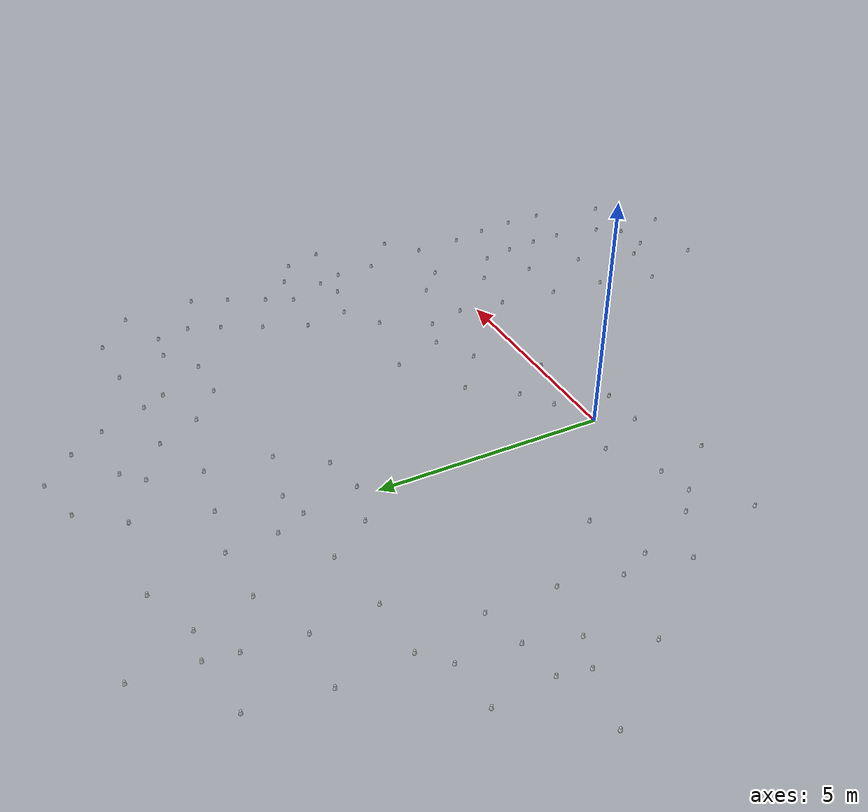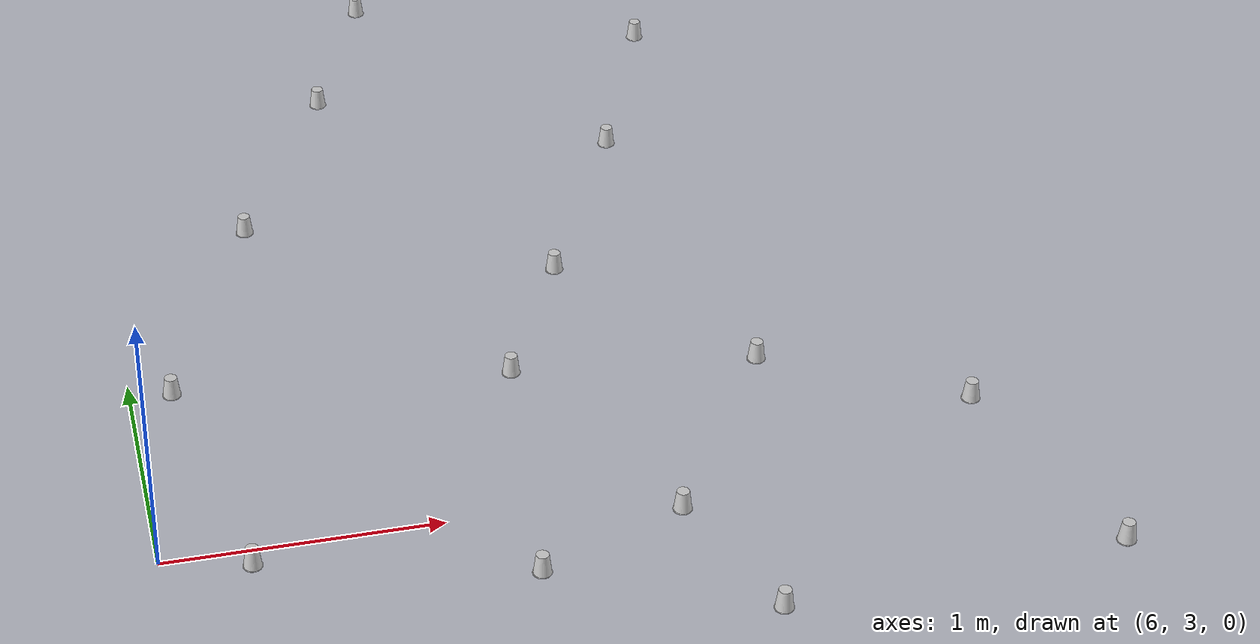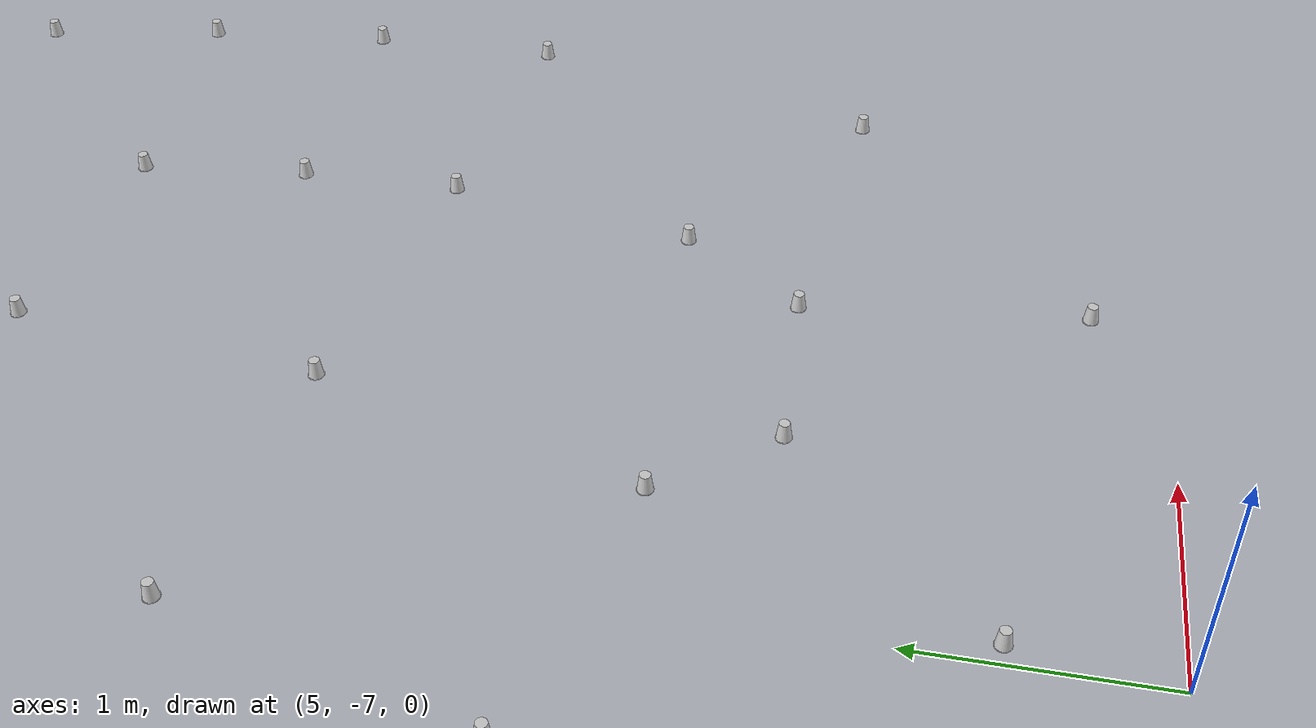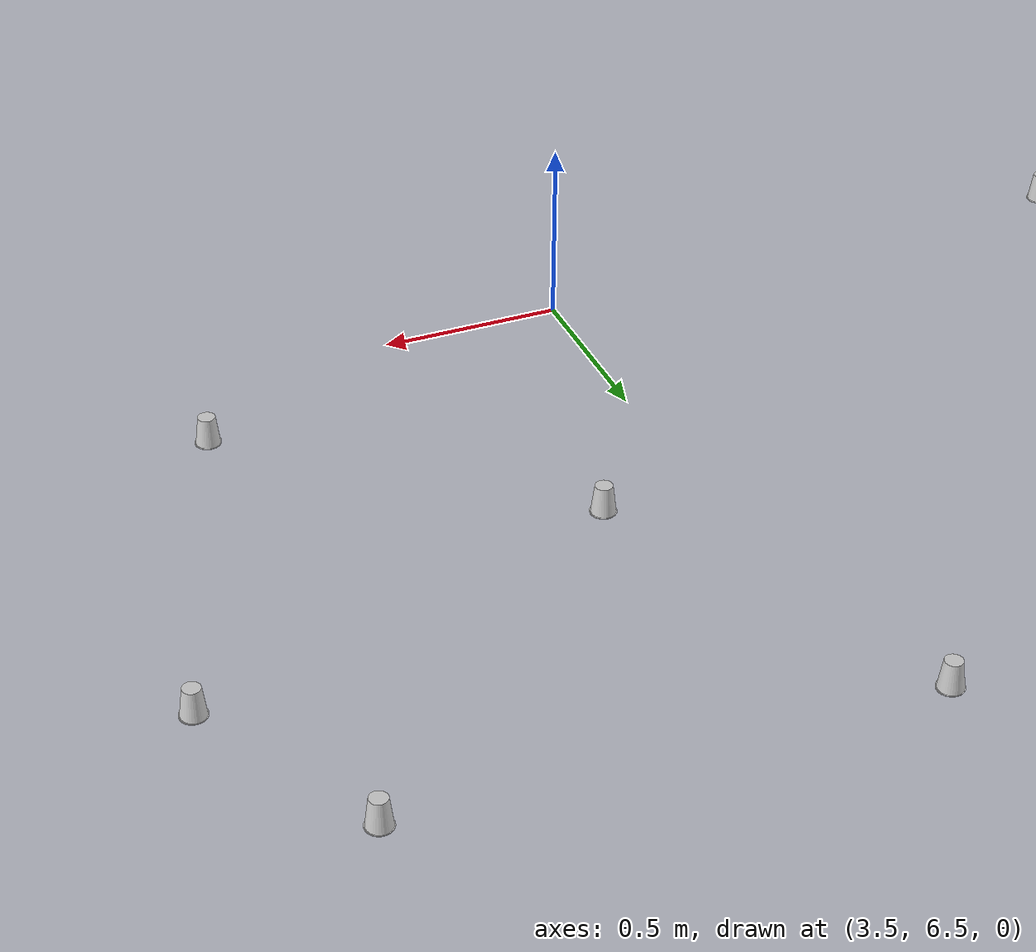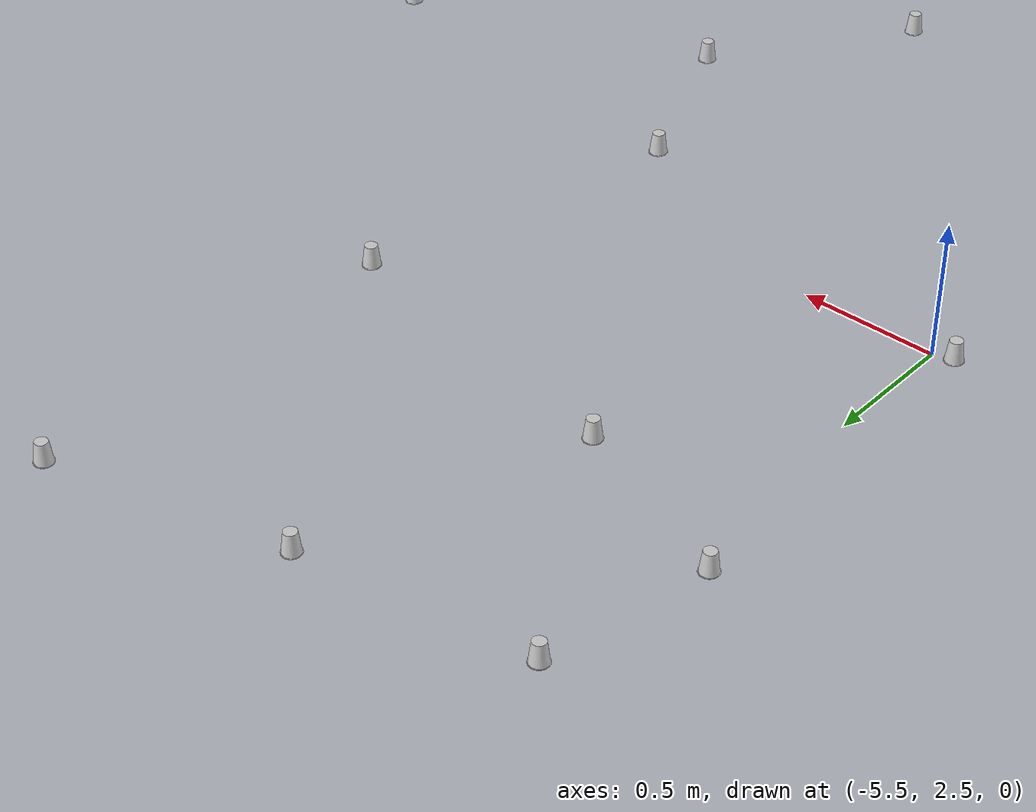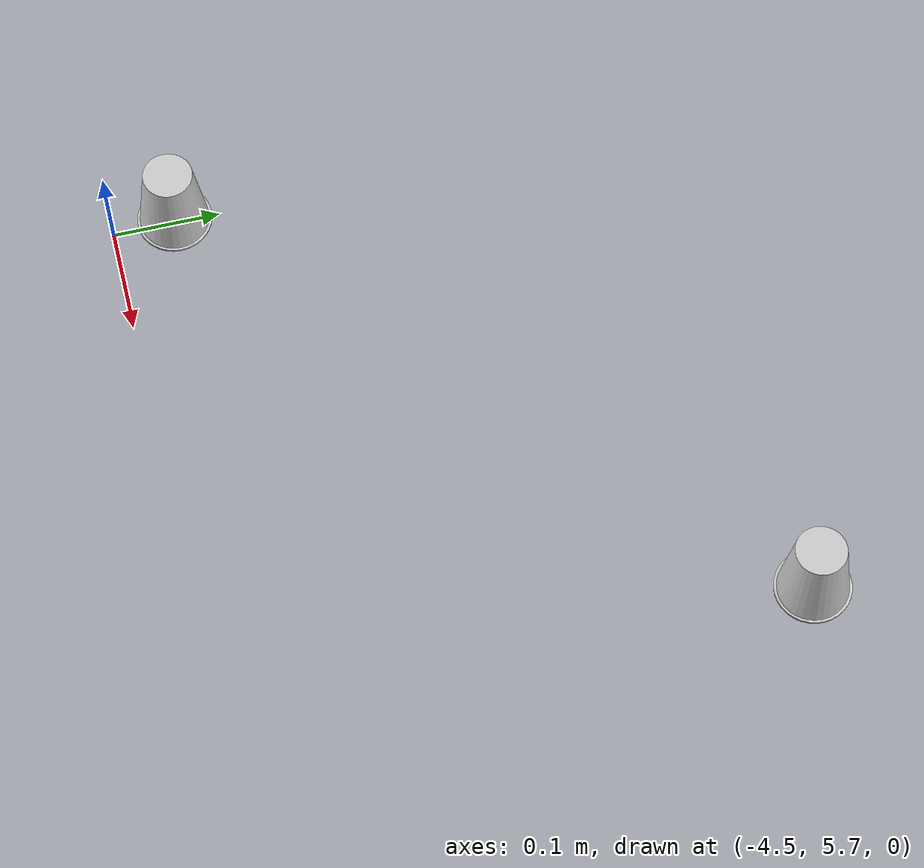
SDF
<?xml version='1.0' encoding='UTF-8'?>
<sdf version="1.4">
  <model name="some track">
    <include>
      <uri>model://cone_yellow</uri>
      <pose>0.583589007108292 -0.7696091175995019 0 0 0 0</pose>
      <name>cone_right_0</name>
    </include>
    <include>
      <uri>model://cone_yellow</uri>
      <pose>2.24943002870523 -0.09118990269669247 0 0 0 0</pose>
      <name>cone_right_1</name>
    </include>
    <include>
      <uri>model://cone_yellow</uri>
      <pose>3.235803745951537 1.0829586999844123 0 0 0 0</pose>
      <name>cone_right_2</name>
    </include>
    <include>
      <uri>model://cone_yellow</uri>
      <pose>4.126395633885825 1.570532858865489 0 0 0 0</pose>
      <name>cone_right_3</name>
    </include>
    <include>
      <uri>model://cone_yellow</uri>
      <pose>4.883761104900243 1.2791141345525148 0 0 0 0</pose>
      <name>cone_right_4</name>
    </include>
    <include>
      <uri>model://cone_yellow</uri>
      <pose>5.115553462184828 0.40940255156920635 0 0 0 0</pose>
      <name>cone_right_5</name>
    </include>
    <include>
      <uri>model://cone_yellow</uri>
      <pose>4.989859720882258 -0.6942495351093164 0 0 0 0</pose>
      <name>cone_right_6</name>
    </include>
    <include>
      <uri>model://cone_yellow</uri>
      <pose>4.8571133489841865 -2.0641194481525207 0 0 0 0</pose>
      <name>cone_right_7</name>
    </include>
    <include>
      <uri>model://cone_yellow</uri>
      <pose>4.731190555467122 -3.360131154909003 0 0 0 0</pose>
      <name>cone_right_8</name>
    </include>
    <include>
      <uri>model://cone_yellow</uri>
      <pose>4.373203166632164 -4.690241786618625 0 0 0 0</pose>
      <name>cone_right_9</name>
    </include>
    <include>
      <uri>model://cone_yellow</uri>
      <pose>5.087928799197132 -6.3678781803901865 0 0 0 0</pose>
      <name>cone_right_10</name>
    </include>
    <include>
      <uri>model://cone_yellow</uri>
      <pose>6.922831055264934 -6.67300092533221 0 0 0 0</pose>
      <name>cone_right_11</name>
    </include>
    <include>
      <uri>model://cone_yellow</uri>
      <pose>8.195565542916837 -5.568966994588301 0 0 0 0</pose>
      <name>cone_right_12</name>
    </include>
    <include>
      <uri>model://cone_yellow</uri>
      <pose>8.576331552117795 -3.8710940322960474 0 0 0 0</pose>
      <name>cone_right_13</name>
    </include>
    <include>
      <uri>model://cone_yellow</uri>
      <pose>8.563769762967747 -2.9696765424473592 0 0 0 0</pose>
      <name>cone_right_14</name>
    </include>
    <include>
      <uri>model://cone_yellow</uri>
      <pose>8.464509025783059 -2.073906762252765 0 0 0 0</pose>
      <name>cone_right_15</name>
    </include>
    <include>
      <uri>model://cone_yellow</uri>
      <pose>8.302023140736598 -1.2190041056068326 0 0 0 0</pose>
      <name>cone_right_16</name>
    </include>
    <include>
      <uri>model://cone_yellow</uri>
      <pose>8.25647984927409 -0.07724787858975865 0 0 0 0</pose>
      <name>cone_right_17</name>
    </include>
    <include>
      <uri>model://cone_yellow</uri>
      <pose>8.991000449996772 0.5662821472809246 0 0 0 0</pose>
      <name>cone_right_18</name>
    </include>
    <include>
      <uri>model://cone_yellow</uri>
      <pose>9.263680717973065 2.408579022444409 0 0 0 0</pose>
      <name>cone_right_19</name>
    </include>
    <include>
      <uri>model://cone_yellow</uri>
      <pose>9.007850910027058 3.2751313498097665 0 0 0 0</pose>
      <name>cone_right_20</name>
    </include>
    <include>
      <uri>model://cone_yellow</uri>
      <pose>7.396967898715231 3.7862380996157814 0 0 0 0</pose>
      <name>cone_right_21</name>
    </include>
    <include>
      <uri>model://cone_yellow</uri>
      <pose>7.70024113869991 4.3963544366834775 0 0 0 0</pose>
      <name>cone_right_22</name>
    </include>
    <include>
      <uri>model://cone_yellow</uri>
      <pose>8.111546850525015 5.230541698648054 0 0 0 0</pose>
      <name>cone_right_23</name>
    </include>
    <include>
      <uri>model://cone_yellow</uri>
      <pose>8.436211109141361 6.039813071662059 0 0 0 0</pose>
      <name>cone_right_24</name>
    </include>
    <include>
      <uri>model://cone_yellow</uri>
      <pose>8.312891527650365 7.696920933023274 0 0 0 0</pose>
      <name>cone_right_25</name>
    </include>
    <include>
      <uri>model://cone_yellow</uri>
      <pose>4.934542926315535 7.799093103535977 0 0 0 0</pose>
      <name>cone_right_26</name>
    </include>
    <include>
      <uri>model://cone_yellow</uri>
      <pose>4.6671698481437645 8.292913274120698 0 0 0 0</pose>
      <name>cone_right_27</name>
    </include>
    <include>
      <uri>model://cone_yellow</uri>
      <pose>4.238079434961489 9.310746750608974 0 0 0 0</pose>
      <name>cone_right_28</name>
    </include>
    <include>
      <uri>model://cone_yellow</uri>
      <pose>3.7511276764740544 10.048411819984608 0 0 0 0</pose>
      <name>cone_right_29</name>
    </include>
    <include>
      <uri>model://cone_yellow</uri>
      <pose>1.9228351139174766 10.468658543235843 0 0 0 0</pose>
      <name>cone_right_30</name>
    </include>
    <include>
      <uri>model://cone_yellow</uri>
      <pose>1.232442516302764 9.563271438475368 0 0 0 0</pose>
      <name>cone_right_31</name>
    </include>
    <include>
      <uri>model://cone_yellow</uri>
      <pose>0.8194323304207409 8.028541355771152 0 0 0 0</pose>
      <name>cone_right_32</name>
    </include>
    <include>
      <uri>model://cone_yellow</uri>
      <pose>0.6525130206930447 6.72039734893066 0 0 0 0</pose>
      <name>cone_right_33</name>
    </include>
    <include>
      <uri>model://cone_yellow</uri>
      <pose>0.015871236371141684 6.553314815356496 0 0 0 0</pose>
      <name>cone_right_34</name>
    </include>
    <include>
      <uri>model://cone_yellow</uri>
      <pose>-0.2831254388546792 7.178294153551901 0 0 0 0</pose>
      <name>cone_right_35</name>
    </include>
    <include>
      <uri>model://cone_yellow</uri>
      <pose>-0.3520715942056466 8.223539528368295 0 0 0 0</pose>
      <name>cone_right_36</name>
    </include>
    <include>
      <uri>model://cone_yellow</uri>
      <pose>-0.74337674395007 9.788748139651943 0 0 0 0</pose>
      <name>cone_right_37</name>
    </include>
    <include>
      <uri>model://cone_yellow</uri>
      <pose>-2.4953426612441882 10.659286189594507 0 0 0 0</pose>
      <name>cone_right_38</name>
    </include>
    <include>
      <uri>model://cone_yellow</uri>
      <pose>-3.8862368269471705 9.205601147669608 0 0 0 0</pose>
      <name>cone_right_39</name>
    </include>
    <include>
      <uri>model://cone_yellow</uri>
      <pose>-4.088979865017309 7.696796514227832 0 0 0 0</pose>
      <name>cone_right_40</name>
    </include>
    <include>
      <uri>model://cone_yellow</uri>
      <pose>-4.00591172065522 6.235873838154754 0 0 0 0</pose>
      <name>cone_right_41</name>
    </include>
    <include>
      <uri>model://cone_yellow</uri>
      <pose>-4.504562527867765 5.75869590041592 0 0 0 0</pose>
      <name>cone_right_42</name>
    </include>
    <include>
      <uri>model://cone_yellow</uri>
      <pose>-5.551666967226151 5.6738093858385925 0 0 0 0</pose>
      <name>cone_right_43</name>
    </include>
    <include>
      <uri>model://cone_yellow</uri>
      <pose>-6.80863020195866 4.12128773315843 0 0 0 0</pose>
      <name>cone_right_44</name>
    </include>
    <include>
      <uri>model://cone_yellow</uri>
      <pose>-5.570335270039995 2.480174757924448 0 0 0 0</pose>
      <name>cone_right_45</name>
    </include>
    <include>
      <uri>model://cone_yellow</uri>
      <pose>-4.053810303210472 2.1119341923462382 0 0 0 0</pose>
      <name>cone_right_46</name>
    </include>
    <include>
      <uri>model://cone_yellow</uri>
      <pose>-3.7749660045900812 1.4539563071306711 0 0 0 0</pose>
      <name>cone_right_47</name>
    </include>
    <include>
      <uri>model://cone_yellow</uri>
      <pose>-4.258192062991904 0.7404525257401842 0 0 0 0</pose>
      <name>cone_right_48</name>
    </include>
    <include>
      <uri>model://cone_yellow</uri>
      <pose>-3.6450108753639174 -1.1881485674039258 0 0 0 0</pose>
      <name>cone_right_49</name>
    </include>
    <include>
      <uri>model://cone_yellow</uri>
      <pose>-1.7102672057526285 -1.4405297008459108 0 0 0 0</pose>
      <name>cone_right_50</name>
    </include>
    <include>
      <uri>model://cone_yellow</uri>
      <pose>-0.35306088244469686 -0.7728776240404348 0 0 0 0</pose>
      <name>cone_right_51</name>
    </include>
    <include>
      <uri>model://cone_yellow</uri>
      <pose>8.307588909050942 3.6747710082682445 0 0 0 0</pose>
      <name>cone_right_52</name>
    </include>
    <include>
      <uri>model://cone_yellow</uri>
      <pose>3.0118128523868606 10.744975925476915 0 0 0 0</pose>
      <name>cone_right_53</name>
    </include>
    <include>
      <uri>model://cone_yellow</uri>
      <pose>7.372231060081695 8.489112877962867 0 0 0 0</pose>
      <name>cone_right_54</name>
    </include>
    <include>
      <uri>model://cone_yellow</uri>
      <pose>6.010460074082367 8.461602352993182 0 0 0 0</pose>
      <name>cone_right_55</name>
    </include>
    <include>
      <uri>model://cone_blue</uri>
      <pose>0.8542288959070702 0.45074085293804234 0 0 0 0</pose>
      <name>cone_left_0</name>
    </include>
    <include>
      <uri>model://cone_blue</uri>
      <pose>1.502369283368533 0.9110078037350167 0 0 0 0</pose>
      <name>cone_left_1</name>
    </include>
    <include>
      <uri>model://cone_blue</uri>
      <pose>2.2473372048732707 1.8480952218997944 0 0 0 0</pose>
      <name>cone_left_2</name>
    </include>
    <include>
      <uri>model://cone_blue</uri>
      <pose>3.688274670750814 2.741237783969014 0 0 0 0</pose>
      <name>cone_left_3</name>
    </include>
    <include>
      <uri>model://cone_blue</uri>
      <pose>5.4903031839847785 2.372094786851452 0 0 0 0</pose>
      <name>cone_left_4</name>
    </include>
    <include>
      <uri>model://cone_blue</uri>
      <pose>6.33123466476965 0.7002963701386631 0 0 0 0</pose>
      <name>cone_left_5</name>
    </include>
    <include>
      <uri>model://cone_blue</uri>
      <pose>6.225387119726417 -0.8839125170150849 0 0 0 0</pose>
      <name>cone_left_6</name>
    </include>
    <include>
      <uri>model://cone_blue</uri>
      <pose>6.105137654570906 -2.1343713710072527 0 0 0 0</pose>
      <name>cone_left_7</name>
    </include>
    <include>
      <uri>model://cone_blue</uri>
      <pose>5.969281269585568 -3.5322688428616322 0 0 0 0</pose>
      <name>cone_left_8</name>
    </include>
    <include>
      <uri>model://cone_blue</uri>
      <pose>5.585497849256548 -4.994940986618635 0 0 0 0</pose>
      <name>cone_left_9</name>
    </include>
    <include>
      <uri>model://cone_blue</uri>
      <pose>5.96607828570017 -5.478297672873047 0 0 0 0</pose>
      <name>cone_left_10</name>
    </include>
    <include>
      <uri>model://cone_blue</uri>
      <pose>6.772131773349827 -5.4321182852609295 0 0 0 0</pose>
      <name>cone_left_11</name>
    </include>
    <include>
      <uri>model://cone_blue</uri>
      <pose>7.151167001436391 -4.882139733514954 0 0 0 0</pose>
      <name>cone_left_12</name>
    </include>
    <include>
      <uri>model://cone_blue</uri>
      <pose>7.333527942595058 -3.7371567777428205 0 0 0 0</pose>
      <name>cone_left_13</name>
    </include>
    <include>
      <uri>model://cone_blue</uri>
      <pose>7.314007560331207 -2.994057618327338 0 0 0 0</pose>
      <name>cone_left_14</name>
    </include>
    <include>
      <uri>model://cone_blue</uri>
      <pose>7.222539903265307 -2.215373008094267 0 0 0 0</pose>
      <name>cone_left_15</name>
    </include>
    <include>
      <uri>model://cone_blue</uri>
      <pose>7.074499997990257 -1.4549848972449366 0 0 0 0</pose>
      <name>cone_left_16</name>
    </include>
    <include>
      <uri>model://cone_blue</uri>
      <pose>7.01806707326318 0.09255729274772664 0 0 0 0</pose>
      <name>cone_left_17</name>
    </include>
    <include>
      <uri>model://cone_blue</uri>
      <pose>8.052989081017227 1.3924992323530745 0 0 0 0</pose>
      <name>cone_left_18</name>
    </include>
    <include>
      <uri>model://cone_blue</uri>
      <pose>8.01611482737004 2.330608844787292 0 0 0 0</pose>
      <name>cone_left_19</name>
    </include>
    <include>
      <uri>model://cone_blue</uri>
      <pose>7.8165957303633515 2.896434773479331 0 0 0 0</pose>
      <name>cone_left_20</name>
    </include>
    <include>
      <uri>model://cone_blue</uri>
      <pose>7.266693568698114 2.6764074789213894 0 0 0 0</pose>
      <name>cone_left_21</name>
    </include>
    <include>
      <uri>model://cone_blue</uri>
      <pose>6.154359854396787 3.921977733456049 0 0 0 0</pose>
      <name>cone_left_22</name>
    </include>
    <include>
      <uri>model://cone_blue</uri>
      <pose>6.557779880253124 4.903584436730977 0 0 0 0</pose>
      <name>cone_left_23</name>
    </include>
    <include>
      <uri>model://cone_blue</uri>
      <pose>6.990125890795033 5.782732816901765 0 0 0 0</pose>
      <name>cone_left_24</name>
    </include>
    <include>
      <uri>model://cone_blue</uri>
      <pose>7.275071065681959 6.502688648329371 0 0 0 0</pose>
      <name>cone_left_25</name>
    </include>
    <include>
      <uri>model://cone_blue</uri>
      <pose>7.14995551041446 7.238576281243094 0 0 0 0</pose>
      <name>cone_left_26</name>
    </include>
    <include>
      <uri>model://cone_blue</uri>
      <pose>6.431110592821098 7.33585279998237 0 0 0 0</pose>
      <name>cone_left_27</name>
    </include>
    <include>
      <uri>model://cone_blue</uri>
      <pose>5.6471017096924125 6.77207802076822 0 0 0 0</pose>
      <name>cone_left_28</name>
    </include>
    <include>
      <uri>model://cone_blue</uri>
      <pose>3.7602268350026757 7.432707269192482 0 0 0 0</pose>
      <name>cone_left_29</name>
    </include>
    <include>
      <uri>model://cone_blue</uri>
      <pose>2.7168431901533956 9.346446292799396 0 0 0 0</pose>
      <name>cone_left_30</name>
    </include>
    <include>
      <uri>model://cone_blue</uri>
      <pose>2.305967193954888 8.922924058944616 0 0 0 0</pose>
      <name>cone_left_31</name>
    </include>
    <include>
      <uri>model://cone_blue</uri>
      <pose>2.054565848339336 7.836330032186832 0 0 0 0</pose>
      <name>cone_left_32</name>
    </include>
    <include>
      <uri>model://cone_blue</uri>
      <pose>1.873351339551862 6.45196896144905 0 0 0 0</pose>
      <name>cone_left_33</name>
    </include>
    <include>
      <uri>model://cone_blue</uri>
      <pose>0.27225595445427375 5.329890573184783 0 0 0 0</pose>
      <name>cone_left_34</name>
    </include>
    <include>
      <uri>model://cone_blue</uri>
      <pose>-1.3394643610966663 6.509976802769627 0 0 0 0</pose>
      <name>cone_left_35</name>
    </include>
    <include>
      <uri>model://cone_blue</uri>
      <pose>-1.6002440699771547 8.155971261212596 0 0 0 0</pose>
      <name>cone_left_36</name>
    </include>
    <include>
      <uri>model://cone_blue</uri>
      <pose>-1.9042526269531495 9.325210455896006 0 0 0 0</pose>
      <name>cone_left_37</name>
    </include>
    <include>
      <uri>model://cone_blue</uri>
      <pose>-2.6038202746085757 9.414002042341853 0 0 0 0</pose>
      <name>cone_left_38</name>
    </include>
    <include>
      <uri>model://cone_blue</uri>
      <pose>-2.7073675403202158 8.789948401921844 0 0 0 0</pose>
      <name>cone_left_39</name>
    </include>
    <include>
      <uri>model://cone_blue</uri>
      <pose>-2.8415212996088366 7.617127652123259 0 0 0 0</pose>
      <name>cone_left_40</name>
    </include>
    <include>
      <uri>model://cone_blue</uri>
      <pose>-2.7567037755418498 6.280365521261055 0 0 0 0</pose>
      <name>cone_left_41</name>
    </include>
    <include>
      <uri>model://cone_blue</uri>
      <pose>-3.7511927197508492 4.761232150589451 0 0 0 0</pose>
      <name>cone_left_42</name>
    </include>
    <include>
      <uri>model://cone_blue</uri>
      <pose>-5.469173048300547 4.426534454903037 0 0 0 0</pose>
      <name>cone_left_43</name>
    </include>
    <include>
      <uri>model://cone_blue</uri>
      <pose>-5.596326246882924 3.8166254274694436 0 0 0 0</pose>
      <name>cone_left_44</name>
    </include>
    <include>
      <uri>model://cone_blue</uri>
      <pose>-4.947333234288 3.5638575821165044 0 0 0 0</pose>
      <name>cone_left_45</name>
    </include>
    <include>
      <uri>model://cone_blue</uri>
      <pose>-3.76897145884692 3.3290483335596397 0 0 0 0</pose>
      <name>cone_left_46</name>
    </include>
    <include>
      <uri>model://cone_blue</uri>
      <pose>-2.591609558189792 1.8566565936501631 0 0 0 0</pose>
      <name>cone_left_47</name>
    </include>
    <include>
      <uri>model://cone_blue</uri>
      <pose>-3.1922579132235573 0.08754794744590527 0 0 0 0</pose>
      <name>cone_left_48</name>
    </include>
    <include>
      <uri>model://cone_blue</uri>
      <pose>-2.7104220227379034 -0.3580620197794078 0 0 0 0</pose>
      <name>cone_left_49</name>
    </include>
    <include>
      <uri>model://cone_blue</uri>
      <pose>-2.0038704481916634 -0.22550001559979072 0 0 0 0</pose>
      <name>cone_left_50</name>
    </include>
    <include>
      <uri>model://cone_blue</uri>
      <pose>-0.9150248523490256 0.34367801565217226 0 0 0 0</pose>
      <name>cone_left_51</name>
    </include>
    <include>
      <uri>model://cone_blue</uri>
      <pose>6.313075848748888 2.920982624098926 0 0 0 0</pose>
      <name>cone_left_52</name>
    </include>
    <include>
      <uri>model://cone_blue</uri>
      <pose>4.593668038143669 6.769705067357641 0 0 0 0</pose>
      <name>cone_left_53</name>
    </include>
    <include>
      <uri>model://cone_blue</uri>
      <pose>3.3006733645685387 8.35156025311445 0 0 0 0</pose>
      <name>cone_left_54</name>
    </include>
    <include>
      <uri>model://cone_blue</uri>
      <pose>1.1823629419029018 5.504220918752203 0 0 0 0</pose>
      <name>cone_left_55</name>
    </include>
    <include>
      <uri>model://cone_blue</uri>
      <pose>-0.7021080185204127 5.600507756146094 0 0 0 0</pose>
      <name>cone_left_56</name>
    </include>
    <include>
      <uri>model://cone_blue</uri>
      <pose>-4.622357826700316 4.555107807298114 0 0 0 0</pose>
      <name>cone_left_57</name>
    </include>
  </model>
</sdf>

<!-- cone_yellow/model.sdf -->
<sdf version='1.4'>
  <model name="cone_yellow">
    <link name="link">
    <collision name="collision"><geometry><box><size> 0.05 0.05 0.01</size>
             </box></geometry></collision>
      <visual name="visual">
        <geometry>
          <mesh>
            <uri>model://cup.dae</uri>
            <scale>1 1 1</scale>
          </mesh>
        </geometry>
        <material>
            <script>
              <uri>model://cone_yellow/materials/scripts</uri>
              <uri>model://cone_yellow/materials/textures</uri>
              <name>cone_yellow/Image</name>
            </script>
        </material>
      </visual>
    </link>
  </model>
</sdf>

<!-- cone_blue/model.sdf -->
<sdf version='1.4'>
  <model name="cone_blue">
    <link name="link">
    <collision name="collision"><geometry><box><size> 0.05 0.05 0.01</size>
             </box></geometry></collision>
      <visual name="visual">
        <geometry>
          <mesh>
            <uri>model://cup.dae</uri>
            <scale>1 1 1</scale>
          </mesh>
        </geometry>
        <material>
            <script>
              <uri>model://cone_blue/materials/scripts</uri>
              <uri>model://cone_blue/materials/textures</uri>
              <name>cone_blue/Image</name>
            </script>
        </material>
      </visual>
    </link>
  </model>
</sdf>
